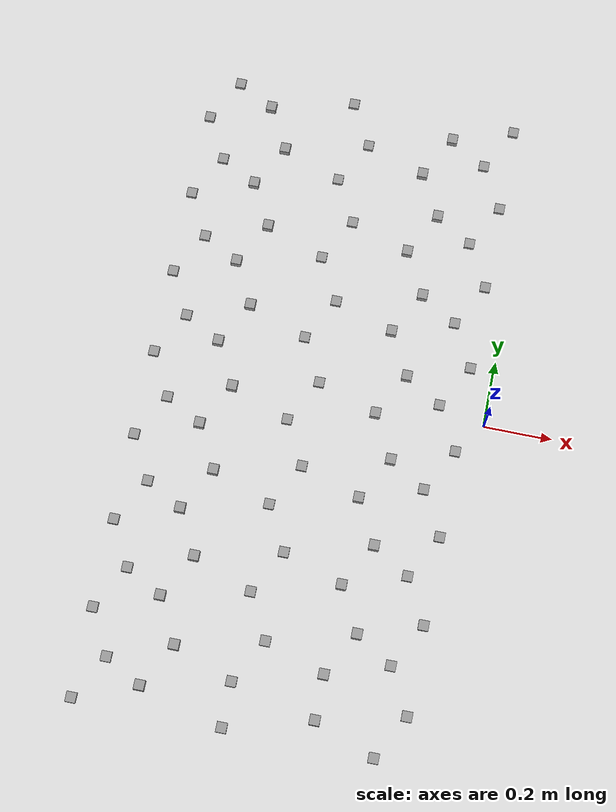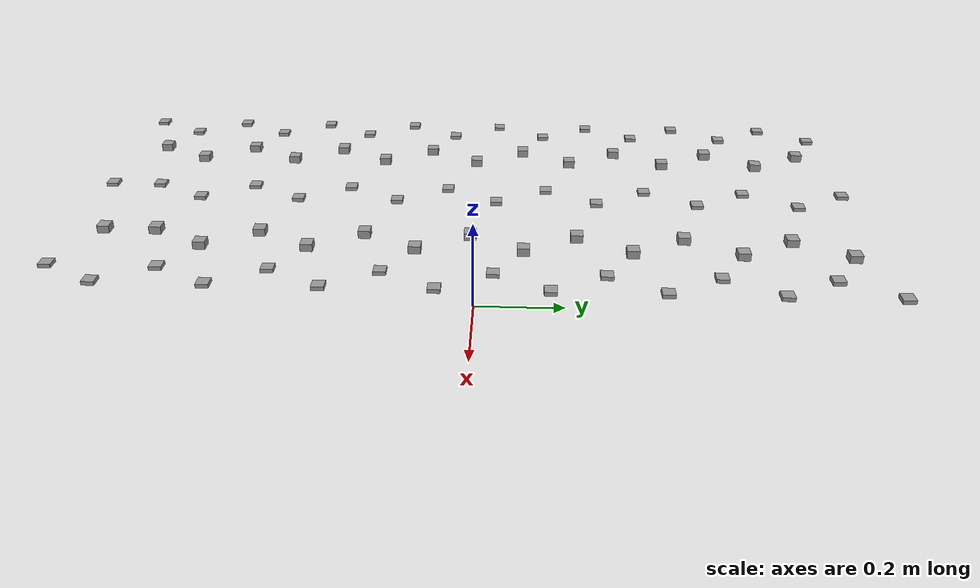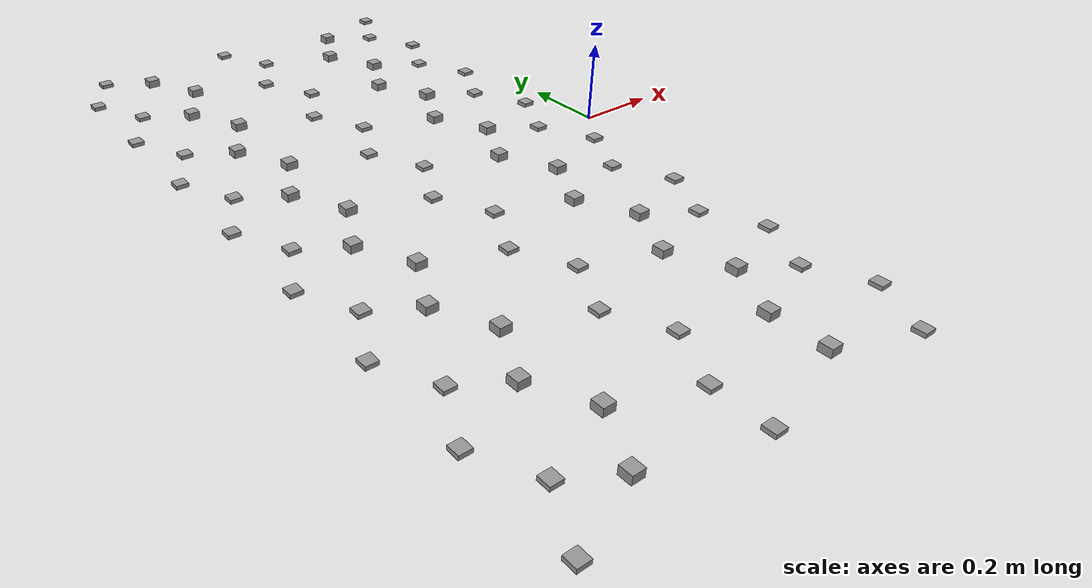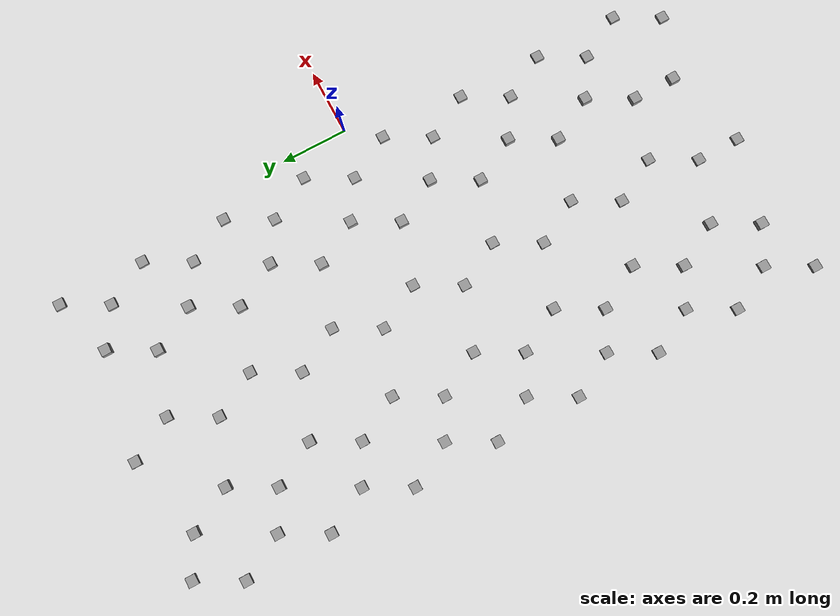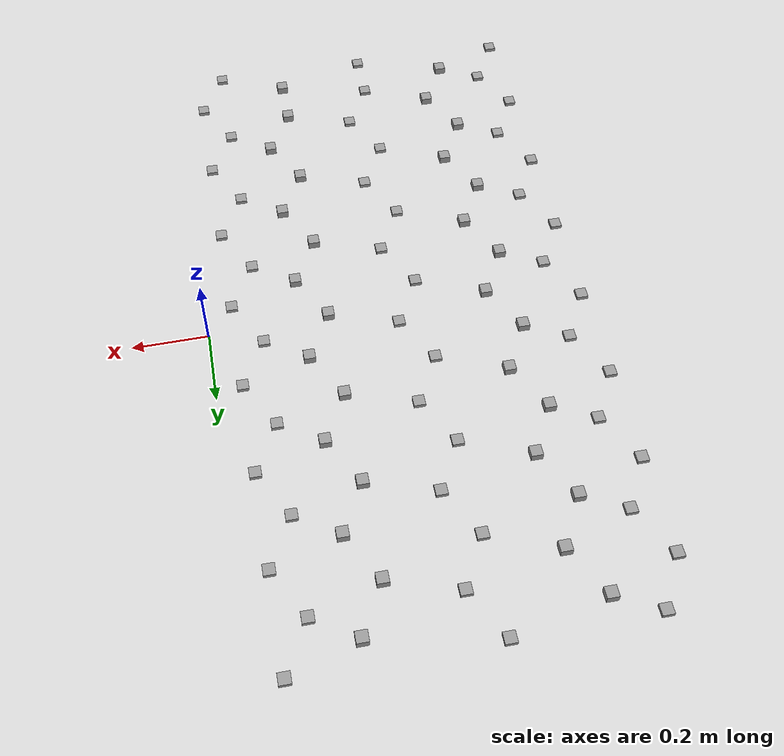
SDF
<sdf version="1.5">
 <world name="default">
  <model name="unit_box_0">
   <pose>-1 -1 0 0 0 0</pose>
   <link name="link">
    <inertial>
     <mass>1</mass>
     <inertia><ixx>0</ixx><ixy>0</ixy><ixz>0</ixz><iyy>0</iyy><iyz>0</iyz><izz>0</izz></inertia>
    </inertial>
    <collision name="collision"><geometry><box><size>0.03 0.03 0.01</size></box></geometry></collision>
    <visual name="visual">
     <geometry><box><size>0.03 0.03 0.01</size></box></geometry>
     <material>
      <script><name>Gazebo/Grey</name><uri>file://media/materials/scripts/gazebo.material</uri></script>
     </material>
    </visual>
   </link>
  </model>
  <model name="unit_box_1">
   <pose>-0.93 -0.87 0 0 0 0</pose>
   <link name="link">
    <inertial>
     <mass>1</mass>
     <inertia><ixx>0</ixx><ixy>0</ixy><ixz>0</ixz><iyy>0</iyy><iyz>0</iyz><izz>0</izz></inertia>
    </inertial>
    <collision name="collision"><geometry><box><size>0.03 0.03 0.01</size></box></geometry></collision>
    <visual name="visual">
     <geometry><box><size>0.03 0.03 0.01</size></box></geometry>
     <material>
      <script><name>Gazebo/Grey</name><uri>file://media/materials/scripts/gazebo.material</uri></script>
     </material>
    </visual>
   </link>
  </model>
  <model name="unit_box_2">
   <pose>-1 -0.74 0 0 0 0</pose>
   <link name="link">
    <inertial>
     <mass>1</mass>
     <inertia><ixx>0</ixx><ixy>0</ixy><ixz>0</ixz><iyy>0</iyy><iyz>0</iyz><izz>0</izz></inertia>
    </inertial>
    <collision name="collision"><geometry><box><size>0.03 0.03 0.01</size></box></geometry></collision>
    <visual name="visual">
     <geometry><box><size>0.03 0.03 0.01</size></box></geometry>
     <material>
      <script><name>Gazebo/Grey</name><uri>file://media/materials/scripts/gazebo.material</uri></script>
     </material>
    </visual>
   </link>
  </model>
  <model name="unit_box_3">
   <pose>-0.93 -0.61 0 0 0 0</pose>
   <link name="link">
    <inertial>
     <mass>1</mass>
     <inertia><ixx>0</ixx><ixy>0</ixy><ixz>0</ixz><iyy>0</iyy><iyz>0</iyz><izz>0</izz></inertia>
    </inertial>
    <collision name="collision"><geometry><box><size>0.03 0.03 0.01</size></box></geometry></collision>
    <visual name="visual">
     <geometry><box><size>0.03 0.03 0.01</size></box></geometry>
     <material>
      <script><name>Gazebo/Grey</name><uri>file://media/materials/scripts/gazebo.material</uri></script>
     </material>
    </visual>
   </link>
  </model>
  <model name="unit_box_4">
   <pose>-1 -0.48 0 0 0 0</pose>
   <link name="link">
    <inertial>
     <mass>1</mass>
     <inertia><ixx>0</ixx><ixy>0</ixy><ixz>0</ixz><iyy>0</iyy><iyz>0</iyz><izz>0</izz></inertia>
    </inertial>
    <collision name="collision"><geometry><box><size>0.03 0.03 0.01</size></box></geometry></collision>
    <visual name="visual">
     <geometry><box><size>0.03 0.03 0.01</size></box></geometry>
     <material>
      <script><name>Gazebo/Grey</name><uri>file://media/materials/scripts/gazebo.material</uri></script>
     </material>
    </visual>
   </link>
  </model>
  <model name="unit_box_5">
   <pose>-0.93 -0.35 0 0 0 0</pose>
   <link name="link">
    <inertial>
     <mass>1</mass>
     <inertia><ixx>0</ixx><ixy>0</ixy><ixz>0</ixz><iyy>0</iyy><iyz>0</iyz><izz>0</izz></inertia>
    </inertial>
    <collision name="collision"><geometry><box><size>0.03 0.03 0.01</size></box></geometry></collision>
    <visual name="visual">
     <geometry><box><size>0.03 0.03 0.01</size></box></geometry>
     <material>
      <script><name>Gazebo/Grey</name><uri>file://media/materials/scripts/gazebo.material</uri></script>
     </material>
    </visual>
   </link>
  </model>
  <model name="unit_box_6">
   <pose>-1 -0.22 0 0 0 0</pose>
   <link name="link">
    <inertial>
     <mass>1</mass>
     <inertia><ixx>0</ixx><ixy>0</ixy><ixz>0</ixz><iyy>0</iyy><iyz>0</iyz><izz>0</izz></inertia>
    </inertial>
    <collision name="collision"><geometry><box><size>0.03 0.03 0.01</size></box></geometry></collision>
    <visual name="visual">
     <geometry><box><size>0.03 0.03 0.01</size></box></geometry>
     <material>
      <script><name>Gazebo/Grey</name><uri>file://media/materials/scripts/gazebo.material</uri></script>
     </material>
    </visual>
   </link>
  </model>
  <model name="unit_box_7">
   <pose>-0.93 -0.0899999999999999 0 0 0 0</pose>
   <link name="link">
    <inertial>
     <mass>1</mass>
     <inertia><ixx>0</ixx><ixy>0</ixy><ixz>0</ixz><iyy>0</iyy><iyz>0</iyz><izz>0</izz></inertia>
    </inertial>
    <collision name="collision"><geometry><box><size>0.03 0.03 0.01</size></box></geometry></collision>
    <visual name="visual">
     <geometry><box><size>0.03 0.03 0.01</size></box></geometry>
     <material>
      <script><name>Gazebo/Grey</name><uri>file://media/materials/scripts/gazebo.material</uri></script>
     </material>
    </visual>
   </link>
  </model>
  <model name="unit_box_8">
   <pose>-1 0.0400000000000001 0 0 0 0</pose>
   <link name="link">
    <inertial>
     <mass>1</mass>
     <inertia><ixx>0</ixx><ixy>0</ixy><ixz>0</ixz><iyy>0</iyy><iyz>0</iyz><izz>0</izz></inertia>
    </inertial>
    <collision name="collision"><geometry><box><size>0.03 0.03 0.01</size></box></geometry></collision>
    <visual name="visual">
     <geometry><box><size>0.03 0.03 0.01</size></box></geometry>
     <material>
      <script><name>Gazebo/Grey</name><uri>file://media/materials/scripts/gazebo.material</uri></script>
     </material>
    </visual>
   </link>
  </model>
  <model name="unit_box_9">
   <pose>-0.93 0.17 0 0 0 0</pose>
   <link name="link">
    <inertial>
     <mass>1</mass>
     <inertia><ixx>0</ixx><ixy>0</ixy><ixz>0</ixz><iyy>0</iyy><iyz>0</iyz><izz>0</izz></inertia>
    </inertial>
    <collision name="collision"><geometry><box><size>0.03 0.03 0.01</size></box></geometry></collision>
    <visual name="visual">
     <geometry><box><size>0.03 0.03 0.01</size></box></geometry>
     <material>
      <script><name>Gazebo/Grey</name><uri>file://media/materials/scripts/gazebo.material</uri></script>
     </material>
    </visual>
   </link>
  </model>
  <model name="unit_box_10">
   <pose>-1 0.3 0 0 0 0</pose>
   <link name="link">
    <inertial>
     <mass>1</mass>
     <inertia><ixx>0</ixx><ixy>0</ixy><ixz>0</ixz><iyy>0</iyy><iyz>0</iyz><izz>0</izz></inertia>
    </inertial>
    <collision name="collision"><geometry><box><size>0.03 0.03 0.01</size></box></geometry></collision>
    <visual name="visual">
     <geometry><box><size>0.03 0.03 0.01</size></box></geometry>
     <material>
      <script><name>Gazebo/Grey</name><uri>file://media/materials/scripts/gazebo.material</uri></script>
     </material>
    </visual>
   </link>
  </model>
  <model name="unit_box_11">
   <pose>-0.93 0.43 0 0 0 0</pose>
   <link name="link">
    <inertial>
     <mass>1</mass>
     <inertia><ixx>0</ixx><ixy>0</ixy><ixz>0</ixz><iyy>0</iyy><iyz>0</iyz><izz>0</izz></inertia>
    </inertial>
    <collision name="collision"><geometry><box><size>0.03 0.03 0.01</size></box></geometry></collision>
    <visual name="visual">
     <geometry><box><size>0.03 0.03 0.01</size></box></geometry>
     <material>
      <script><name>Gazebo/Grey</name><uri>file://media/materials/scripts/gazebo.material</uri></script>
     </material>
    </visual>
   </link>
  </model>
  <model name="unit_box_12">
   <pose>-1 0.56 0 0 0 0</pose>
   <link name="link">
    <inertial>
     <mass>1</mass>
     <inertia><ixx>0</ixx><ixy>0</ixy><ixz>0</ixz><iyy>0</iyy><iyz>0</iyz><izz>0</izz></inertia>
    </inertial>
    <collision name="collision"><geometry><box><size>0.03 0.03 0.01</size></box></geometry></collision>
    <visual name="visual">
     <geometry><box><size>0.03 0.03 0.01</size></box></geometry>
     <material>
      <script><name>Gazebo/Grey</name><uri>file://media/materials/scripts/gazebo.material</uri></script>
     </material>
    </visual>
   </link>
  </model>
  <model name="unit_box_13">
   <pose>-0.93 0.69 0 0 0 0</pose>
   <link name="link">
    <inertial>
     <mass>1</mass>
     <inertia><ixx>0</ixx><ixy>0</ixy><ixz>0</ixz><iyy>0</iyy><iyz>0</iyz><izz>0</izz></inertia>
    </inertial>
    <collision name="collision"><geometry><box><size>0.03 0.03 0.01</size></box></geometry></collision>
    <visual name="visual">
     <geometry><box><size>0.03 0.03 0.01</size></box></geometry>
     <material>
      <script><name>Gazebo/Grey</name><uri>file://media/materials/scripts/gazebo.material</uri></script>
     </material>
    </visual>
   </link>
  </model>
  <model name="unit_box_14">
   <pose>-1 0.82 0 0 0 0</pose>
   <link name="link">
    <inertial>
     <mass>1</mass>
     <inertia><ixx>0</ixx><ixy>0</ixy><ixz>0</ixz><iyy>0</iyy><iyz>0</iyz><izz>0</izz></inertia>
    </inertial>
    <collision name="collision"><geometry><box><size>0.03 0.03 0.01</size></box></geometry></collision>
    <visual name="visual">
     <geometry><box><size>0.03 0.03 0.01</size></box></geometry>
     <material>
      <script><name>Gazebo/Grey</name><uri>file://media/materials/scripts/gazebo.material</uri></script>
     </material>
    </visual>
   </link>
  </model>
  <model name="unit_box_15">
   <pose>-0.93 0.95 0 0 0 0</pose>
   <link name="link">
    <inertial>
     <mass>1</mass>
     <inertia><ixx>0</ixx><ixy>0</ixy><ixz>0</ixz><iyy>0</iyy><iyz>0</iyz><izz>0</izz></inertia>
    </inertial>
    <collision name="collision"><geometry><box><size>0.03 0.03 0.01</size></box></geometry></collision>
    <visual name="visual">
     <geometry><box><size>0.03 0.03 0.01</size></box></geometry>
     <material>
      <script><name>Gazebo/Grey</name><uri>file://media/materials/scripts/gazebo.material</uri></script>
     </material>
    </visual>
   </link>
  </model>
  <model name="unit_box_16">
   <pose>-0.82 -0.93 0 0 0 0</pose>
   <link name="link">
    <inertial>
     <mass>1</mass>
     <inertia><ixx>0</ixx><ixy>0</ixy><ixz>0</ixz><iyy>0</iyy><iyz>0</iyz><izz>0</izz></inertia>
    </inertial>
    <collision name="collision"><geometry><box><size>0.03 0.03 0.02</size></box></geometry></collision>
    <visual name="visual">
     <geometry><box><size>0.03 0.03 0.02</size></box></geometry>
     <material>
      <script><name>Gazebo/Grey</name><uri>file://media/materials/scripts/gazebo.material</uri></script>
     </material>
    </visual>
   </link>
  </model>
  <model name="unit_box_17">
   <pose>-0.75 -0.8 0 0 0 0</pose>
   <link name="link">
    <inertial>
     <mass>1</mass>
     <inertia><ixx>0</ixx><ixy>0</ixy><ixz>0</ixz><iyy>0</iyy><iyz>0</iyz><izz>0</izz></inertia>
    </inertial>
    <collision name="collision"><geometry><box><size>0.03 0.03 0.02</size></box></geometry></collision>
    <visual name="visual">
     <geometry><box><size>0.03 0.03 0.02</size></box></geometry>
     <material>
      <script><name>Gazebo/Grey</name><uri>file://media/materials/scripts/gazebo.material</uri></script>
     </material>
    </visual>
   </link>
  </model>
  <model name="unit_box_18">
   <pose>-0.82 -0.67 0 0 0 0</pose>
   <link name="link">
    <inertial>
     <mass>1</mass>
     <inertia><ixx>0</ixx><ixy>0</ixy><ixz>0</ixz><iyy>0</iyy><iyz>0</iyz><izz>0</izz></inertia>
    </inertial>
    <collision name="collision"><geometry><box><size>0.03 0.03 0.02</size></box></geometry></collision>
    <visual name="visual">
     <geometry><box><size>0.03 0.03 0.02</size></box></geometry>
     <material>
      <script><name>Gazebo/Grey</name><uri>file://media/materials/scripts/gazebo.material</uri></script>
     </material>
    </visual>
   </link>
  </model>
  <model name="unit_box_19">
   <pose>-0.75 -0.54 0 0 0 0</pose>
   <link name="link">
    <inertial>
     <mass>1</mass>
     <inertia><ixx>0</ixx><ixy>0</ixy><ixz>0</ixz><iyy>0</iyy><iyz>0</iyz><izz>0</izz></inertia>
    </inertial>
    <collision name="collision"><geometry><box><size>0.03 0.03 0.02</size></box></geometry></collision>
    <visual name="visual">
     <geometry><box><size>0.03 0.03 0.02</size></box></geometry>
     <material>
      <script><name>Gazebo/Grey</name><uri>file://media/materials/scripts/gazebo.material</uri></script>
     </material>
    </visual>
   </link>
  </model>
  <model name="unit_box_20">
   <pose>-0.82 -0.41 0 0 0 0</pose>
   <link name="link">
    <inertial>
     <mass>1</mass>
     <inertia><ixx>0</ixx><ixy>0</ixy><ixz>0</ixz><iyy>0</iyy><iyz>0</iyz><izz>0</izz></inertia>
    </inertial>
    <collision name="collision"><geometry><box><size>0.03 0.03 0.02</size></box></geometry></collision>
    <visual name="visual">
     <geometry><box><size>0.03 0.03 0.02</size></box></geometry>
     <material>
      <script><name>Gazebo/Grey</name><uri>file://media/materials/scripts/gazebo.material</uri></script>
     </material>
    </visual>
   </link>
  </model>
  <model name="unit_box_21">
   <pose>-0.75 -0.28 0 0 0 0</pose>
   <link name="link">
    <inertial>
     <mass>1</mass>
     <inertia><ixx>0</ixx><ixy>0</ixy><ixz>0</ixz><iyy>0</iyy><iyz>0</iyz><izz>0</izz></inertia>
    </inertial>
    <collision name="collision"><geometry><box><size>0.03 0.03 0.02</size></box></geometry></collision>
    <visual name="visual">
     <geometry><box><size>0.03 0.03 0.02</size></box></geometry>
     <material>
      <script><name>Gazebo/Grey</name><uri>file://media/materials/scripts/gazebo.material</uri></script>
     </material>
    </visual>
   </link>
  </model>
  <model name="unit_box_22">
   <pose>-0.82 -0.15 0 0 0 0</pose>
   <link name="link">
    <inertial>
     <mass>1</mass>
     <inertia><ixx>0</ixx><ixy>0</ixy><ixz>0</ixz><iyy>0</iyy><iyz>0</iyz><izz>0</izz></inertia>
    </inertial>
    <collision name="collision"><geometry><box><size>0.03 0.03 0.02</size></box></geometry></collision>
    <visual name="visual">
     <geometry><box><size>0.03 0.03 0.02</size></box></geometry>
     <material>
      <script><name>Gazebo/Grey</name><uri>file://media/materials/scripts/gazebo.material</uri></script>
     </material>
    </visual>
   </link>
  </model>
  <model name="unit_box_23">
   <pose>-0.75 -0.02 0 0 0 0</pose>
   <link name="link">
    <inertial>
     <mass>1</mass>
     <inertia><ixx>0</ixx><ixy>0</ixy><ixz>0</ixz><iyy>0</iyy><iyz>0</iyz><izz>0</izz></inertia>
    </inertial>
    <collision name="collision"><geometry><box><size>0.03 0.03 0.02</size></box></geometry></collision>
    <visual name="visual">
     <geometry><box><size>0.03 0.03 0.02</size></box></geometry>
     <material>
      <script><name>Gazebo/Grey</name><uri>file://media/materials/scripts/gazebo.material</uri></script>
     </material>
    </visual>
   </link>
  </model>
  <model name="unit_box_24">
   <pose>-0.82 0.11 0 0 0 0</pose>
   <link name="link">
    <inertial>
     <mass>1</mass>
     <inertia><ixx>0</ixx><ixy>0</ixy><ixz>0</ixz><iyy>0</iyy><iyz>0</iyz><izz>0</izz></inertia>
    </inertial>
    <collision name="collision"><geometry><box><size>0.03 0.03 0.02</size></box></geometry></collision>
    <visual name="visual">
     <geometry><box><size>0.03 0.03 0.02</size></box></geometry>
     <material>
      <script><name>Gazebo/Grey</name><uri>file://media/materials/scripts/gazebo.material</uri></script>
     </material>
    </visual>
   </link>
  </model>
  <model name="unit_box_25">
   <pose>-0.75 0.24 0 0 0 0</pose>
   <link name="link">
    <inertial>
     <mass>1</mass>
     <inertia><ixx>0</ixx><ixy>0</ixy><ixz>0</ixz><iyy>0</iyy><iyz>0</iyz><izz>0</izz></inertia>
    </inertial>
    <collision name="collision"><geometry><box><size>0.03 0.03 0.02</size></box></geometry></collision>
    <visual name="visual">
     <geometry><box><size>0.03 0.03 0.02</size></box></geometry>
     <material>
      <script><name>Gazebo/Grey</name><uri>file://media/materials/scripts/gazebo.material</uri></script>
     </material>
    </visual>
   </link>
  </model>
  <model name="unit_box_26">
   <pose>-0.82 0.37 0 0 0 0</pose>
   <link name="link">
    <inertial>
     <mass>1</mass>
     <inertia><ixx>0</ixx><ixy>0</ixy><ixz>0</ixz><iyy>0</iyy><iyz>0</iyz><izz>0</izz></inertia>
    </inertial>
    <collision name="collision"><geometry><box><size>0.03 0.03 0.02</size></box></geometry></collision>
    <visual name="visual">
     <geometry><box><size>0.03 0.03 0.02</size></box></geometry>
     <material>
      <script><name>Gazebo/Grey</name><uri>file://media/materials/scripts/gazebo.material</uri></script>
     </material>
    </visual>
   </link>
  </model>
  <model name="unit_box_27">
   <pose>-0.75 0.5 0 0 0 0</pose>
   <link name="link">
    <inertial>
     <mass>1</mass>
     <inertia><ixx>0</ixx><ixy>0</ixy><ixz>0</ixz><iyy>0</iyy><iyz>0</iyz><izz>0</izz></inertia>
    </inertial>
    <collision name="collision"><geometry><box><size>0.03 0.03 0.02</size></box></geometry></collision>
    <visual name="visual">
     <geometry><box><size>0.03 0.03 0.02</size></box></geometry>
     <material>
      <script><name>Gazebo/Grey</name><uri>file://media/materials/scripts/gazebo.material</uri></script>
     </material>
    </visual>
   </link>
  </model>
  <model name="unit_box_28">
   <pose>-0.82 0.63 0 0 0 0</pose>
   <link name="link">
    <inertial>
     <mass>1</mass>
     <inertia><ixx>0</ixx><ixy>0</ixy><ixz>0</ixz><iyy>0</iyy><iyz>0</iyz><izz>0</izz></inertia>
    </inertial>
    <collision name="collision"><geometry><box><size>0.03 0.03 0.02</size></box></geometry></collision>
    <visual name="visual">
     <geometry><box><size>0.03 0.03 0.02</size></box></geometry>
     <material>
      <script><name>Gazebo/Grey</name><uri>file://media/materials/scripts/gazebo.material</uri></script>
     </material>
    </visual>
   </link>
  </model>
  <model name="unit_box_29">
   <pose>-0.75 0.76 0 0 0 0</pose>
   <link name="link">
    <inertial>
     <mass>1</mass>
     <inertia><ixx>0</ixx><ixy>0</ixy><ixz>0</ixz><iyy>0</iyy><iyz>0</iyz><izz>0</izz></inertia>
    </inertial>
    <collision name="collision"><geometry><box><size>0.03 0.03 0.02</size></box></geometry></collision>
    <visual name="visual">
     <geometry><box><size>0.03 0.03 0.02</size></box></geometry>
     <material>
      <script><name>Gazebo/Grey</name><uri>file://media/materials/scripts/gazebo.material</uri></script>
     </material>
    </visual>
   </link>
  </model>
  <model name="unit_box_30">
   <pose>-0.82 0.89 0 0 0 0</pose>
   <link name="link">
    <inertial>
     <mass>1</mass>
     <inertia><ixx>0</ixx><ixy>0</ixy><ixz>0</ixz><iyy>0</iyy><iyz>0</iyz><izz>0</izz></inertia>
    </inertial>
    <collision name="collision"><geometry><box><size>0.03 0.03 0.02</size></box></geometry></collision>
    <visual name="visual">
     <geometry><box><size>0.03 0.03 0.02</size></box></geometry>
     <material>
      <script><name>Gazebo/Grey</name><uri>file://media/materials/scripts/gazebo.material</uri></script>
     </material>
    </visual>
   </link>
  </model>
  <model name="unit_box_31">
   <pose>-0.57 -1 0 0 0 0</pose>
   <link name="link">
    <inertial>
     <mass>1</mass>
     <inertia><ixx>0</ixx><ixy>0</ixy><ixz>0</ixz><iyy>0</iyy><iyz>0</iyz><izz>0</izz></inertia>
    </inertial>
    <collision name="collision"><geometry><box><size>0.03 0.03 0.01</size></box></geometry></collision>
    <visual name="visual">
     <geometry><box><size>0.03 0.03 0.01</size></box></geometry>
     <material>
      <script><name>Gazebo/Grey</name><uri>file://media/materials/scripts/gazebo.material</uri></script>
     </material>
    </visual>
   </link>
  </model>
  <model name="unit_box_32">
   <pose>-0.57 -0.87 0 0 0 0</pose>
   <link name="link">
    <inertial>
     <mass>1</mass>
     <inertia><ixx>0</ixx><ixy>0</ixy><ixz>0</ixz><iyy>0</iyy><iyz>0</iyz><izz>0</izz></inertia>
    </inertial>
    <collision name="collision"><geometry><box><size>0.03 0.03 0.01</size></box></geometry></collision>
    <visual name="visual">
     <geometry><box><size>0.03 0.03 0.01</size></box></geometry>
     <material>
      <script><name>Gazebo/Grey</name><uri>file://media/materials/scripts/gazebo.material</uri></script>
     </material>
    </visual>
   </link>
  </model>
  <model name="unit_box_33">
   <pose>-0.5 -0.74 0 0 0 0</pose>
   <link name="link">
    <inertial>
     <mass>1</mass>
     <inertia><ixx>0</ixx><ixy>0</ixy><ixz>0</ixz><iyy>0</iyy><iyz>0</iyz><izz>0</izz></inertia>
    </inertial>
    <collision name="collision"><geometry><box><size>0.03 0.03 0.01</size></box></geometry></collision>
    <visual name="visual">
     <geometry><box><size>0.03 0.03 0.01</size></box></geometry>
     <material>
      <script><name>Gazebo/Grey</name><uri>file://media/materials/scripts/gazebo.material</uri></script>
     </material>
    </visual>
   </link>
  </model>
  <model name="unit_box_34">
   <pose>-0.57 -0.61 0 0 0 0</pose>
   <link name="link">
    <inertial>
     <mass>1</mass>
     <inertia><ixx>0</ixx><ixy>0</ixy><ixz>0</ixz><iyy>0</iyy><iyz>0</iyz><izz>0</izz></inertia>
    </inertial>
    <collision name="collision"><geometry><box><size>0.03 0.03 0.01</size></box></geometry></collision>
    <visual name="visual">
     <geometry><box><size>0.03 0.03 0.01</size></box></geometry>
     <material>
      <script><name>Gazebo/Grey</name><uri>file://media/materials/scripts/gazebo.material</uri></script>
     </material>
    </visual>
   </link>
  </model>
  <model name="unit_box_35">
   <pose>-0.5 -0.48 0 0 0 0</pose>
   <link name="link">
    <inertial>
     <mass>1</mass>
     <inertia><ixx>0</ixx><ixy>0</ixy><ixz>0</ixz><iyy>0</iyy><iyz>0</iyz><izz>0</izz></inertia>
    </inertial>
    <collision name="collision"><geometry><box><size>0.03 0.03 0.01</size></box></geometry></collision>
    <visual name="visual">
     <geometry><box><size>0.03 0.03 0.01</size></box></geometry>
     <material>
      <script><name>Gazebo/Grey</name><uri>file://media/materials/scripts/gazebo.material</uri></script>
     </material>
    </visual>
   </link>
  </model>
  <model name="unit_box_36">
   <pose>-0.57 -0.35 0 0 0 0</pose>
   <link name="link">
    <inertial>
     <mass>1</mass>
     <inertia><ixx>0</ixx><ixy>0</ixy><ixz>0</ixz><iyy>0</iyy><iyz>0</iyz><izz>0</izz></inertia>
    </inertial>
    <collision name="collision"><geometry><box><size>0.03 0.03 0.01</size></box></geometry></collision>
    <visual name="visual">
     <geometry><box><size>0.03 0.03 0.01</size></box></geometry>
     <material>
      <script><name>Gazebo/Grey</name><uri>file://media/materials/scripts/gazebo.material</uri></script>
     </material>
    </visual>
   </link>
  </model>
  <model name="unit_box_37">
   <pose>-0.5 -0.22 0 0 0 0</pose>
   <link name="link">
    <inertial>
     <mass>1</mass>
     <inertia><ixx>0</ixx><ixy>0</ixy><ixz>0</ixz><iyy>0</iyy><iyz>0</iyz><izz>0</izz></inertia>
    </inertial>
    <collision name="collision"><geometry><box><size>0.03 0.03 0.01</size></box></geometry></collision>
    <visual name="visual">
     <geometry><box><size>0.03 0.03 0.01</size></box></geometry>
     <material>
      <script><name>Gazebo/Grey</name><uri>file://media/materials/scripts/gazebo.material</uri></script>
     </material>
    </visual>
   </link>
  </model>
  <model name="unit_box_38">
   <pose>-0.57 -0.0899999999999999 0 0 0 0</pose>
   <link name="link">
    <inertial>
     <mass>1</mass>
     <inertia><ixx>0</ixx><ixy>0</ixy><ixz>0</ixz><iyy>0</iyy><iyz>0</iyz><izz>0</izz></inertia>
    </inertial>
    <collision name="collision"><geometry><box><size>0.03 0.03 0.01</size></box></geometry></collision>
    <visual name="visual">
     <geometry><box><size>0.03 0.03 0.01</size></box></geometry>
     <material>
      <script><name>Gazebo/Grey</name><uri>file://media/materials/scripts/gazebo.material</uri></script>
     </material>
    </visual>
   </link>
  </model>
  <model name="unit_box_39">
   <pose>-0.5 0.0400000000000001 0 0 0 0</pose>
   <link name="link">
    <inertial>
     <mass>1</mass>
     <inertia><ixx>0</ixx><ixy>0</ixy><ixz>0</ixz><iyy>0</iyy><iyz>0</iyz><izz>0</izz></inertia>
    </inertial>
    <collision name="collision"><geometry><box><size>0.03 0.03 0.01</size></box></geometry></collision>
    <visual name="visual">
     <geometry><box><size>0.03 0.03 0.01</size></box></geometry>
     <material>
      <script><name>Gazebo/Grey</name><uri>file://media/materials/scripts/gazebo.material</uri></script>
     </material>
    </visual>
   </link>
  </model>
  <model name="unit_box_40">
   <pose>-0.57 0.17 0 0 0 0</pose>
   <link name="link">
    <inertial>
     <mass>1</mass>
     <inertia><ixx>0</ixx><ixy>0</ixy><ixz>0</ixz><iyy>0</iyy><iyz>0</iyz><izz>0</izz></inertia>
    </inertial>
    <collision name="collision"><geometry><box><size>0.03 0.03 0.01</size></box></geometry></collision>
    <visual name="visual">
     <geometry><box><size>0.03 0.03 0.01</size></box></geometry>
     <material>
      <script><name>Gazebo/Grey</name><uri>file://media/materials/scripts/gazebo.material</uri></script>
     </material>
    </visual>
   </link>
  </model>
  <model name="unit_box_41">
   <pose>-0.5 0.3 0 0 0 0</pose>
   <link name="link">
    <inertial>
     <mass>1</mass>
     <inertia><ixx>0</ixx><ixy>0</ixy><ixz>0</ixz><iyy>0</iyy><iyz>0</iyz><izz>0</izz></inertia>
    </inertial>
    <collision name="collision"><geometry><box><size>0.03 0.03 0.01</size></box></geometry></collision>
    <visual name="visual">
     <geometry><box><size>0.03 0.03 0.01</size></box></geometry>
     <material>
      <script><name>Gazebo/Grey</name><uri>file://media/materials/scripts/gazebo.material</uri></script>
     </material>
    </visual>
   </link>
  </model>
  <model name="unit_box_42">
   <pose>-0.57 0.43 0 0 0 0</pose>
   <link name="link">
    <inertial>
     <mass>1</mass>
     <inertia><ixx>0</ixx><ixy>0</ixy><ixz>0</ixz><iyy>0</iyy><iyz>0</iyz><izz>0</izz></inertia>
    </inertial>
    <collision name="collision"><geometry><box><size>0.03 0.03 0.01</size></box></geometry></collision>
    <visual name="visual">
     <geometry><box><size>0.03 0.03 0.01</size></box></geometry>
     <material>
      <script><name>Gazebo/Grey</name><uri>file://media/materials/scripts/gazebo.material</uri></script>
     </material>
    </visual>
   </link>
  </model>
  <model name="unit_box_43">
   <pose>-0.5 0.56 0 0 0 0</pose>
   <link name="link">
    <inertial>
     <mass>1</mass>
     <inertia><ixx>0</ixx><ixy>0</ixy><ixz>0</ixz><iyy>0</iyy><iyz>0</iyz><izz>0</izz></inertia>
    </inertial>
    <collision name="collision"><geometry><box><size>0.03 0.03 0.01</size></box></geometry></collision>
    <visual name="visual">
     <geometry><box><size>0.03 0.03 0.01</size></box></geometry>
     <material>
      <script><name>Gazebo/Grey</name><uri>file://media/materials/scripts/gazebo.material</uri></script>
     </material>
    </visual>
   </link>
  </model>
  <model name="unit_box_44">
   <pose>-0.57 0.69 0 0 0 0</pose>
   <link name="link">
    <inertial>
     <mass>1</mass>
     <inertia><ixx>0</ixx><ixy>0</ixy><ixz>0</ixz><iyy>0</iyy><iyz>0</iyz><izz>0</izz></inertia>
    </inertial>
    <collision name="collision"><geometry><box><size>0.03 0.03 0.01</size></box></geometry></collision>
    <visual name="visual">
     <geometry><box><size>0.03 0.03 0.01</size></box></geometry>
     <material>
      <script><name>Gazebo/Grey</name><uri>file://media/materials/scripts/gazebo.material</uri></script>
     </material>
    </visual>
   </link>
  </model>
  <model name="unit_box_45">
   <pose>-0.5 0.82 0 0 0 0</pose>
   <link name="link">
    <inertial>
     <mass>1</mass>
     <inertia><ixx>0</ixx><ixy>0</ixy><ixz>0</ixz><iyy>0</iyy><iyz>0</iyz><izz>0</izz></inertia>
    </inertial>
    <collision name="collision"><geometry><box><size>0.03 0.03 0.01</size></box></geometry></collision>
    <visual name="visual">
     <geometry><box><size>0.03 0.03 0.01</size></box></geometry>
     <material>
      <script><name>Gazebo/Grey</name><uri>file://media/materials/scripts/gazebo.material</uri></script>
     </material>
    </visual>
   </link>
  </model>
  <model name="unit_box_46">
   <pose>-0.57 0.95 0 0 0 0</pose>
   <link name="link">
    <inertial>
     <mass>1</mass>
     <inertia><ixx>0</ixx><ixy>0</ixy><ixz>0</ixz><iyy>0</iyy><iyz>0</iyz><izz>0</izz></inertia>
    </inertial>
    <collision name="collision"><geometry><box><size>0.03 0.03 0.01</size></box></geometry></collision>
    <visual name="visual">
     <geometry><box><size>0.03 0.03 0.01</size></box></geometry>
     <material>
      <script><name>Gazebo/Grey</name><uri>file://media/materials/scripts/gazebo.material</uri></script>
     </material>
    </visual>
   </link>
  </model>
  <model name="unit_box_47">
   <pose>-0.32 -0.93 0 0 0 0</pose>
   <link name="link">
    <inertial>
     <mass>1</mass>
     <inertia><ixx>0</ixx><ixy>0</ixy><ixz>0</ixz><iyy>0</iyy><iyz>0</iyz><izz>0</izz></inertia>
    </inertial>
    <collision name="collision"><geometry><box><size>0.03 0.03 0.02</size></box></geometry></collision>
    <visual name="visual">
     <geometry><box><size>0.03 0.03 0.02</size></box></geometry>
     <material>
      <script><name>Gazebo/Grey</name><uri>file://media/materials/scripts/gazebo.material</uri></script>
     </material>
    </visual>
   </link>
  </model>
  <model name="unit_box_48">
   <pose>-0.32 -0.8 0 0 0 0</pose>
   <link name="link">
    <inertial>
     <mass>1</mass>
     <inertia><ixx>0</ixx><ixy>0</ixy><ixz>0</ixz><iyy>0</iyy><iyz>0</iyz><izz>0</izz></inertia>
    </inertial>
    <collision name="collision"><geometry><box><size>0.03 0.03 0.02</size></box></geometry></collision>
    <visual name="visual">
     <geometry><box><size>0.03 0.03 0.02</size></box></geometry>
     <material>
      <script><name>Gazebo/Grey</name><uri>file://media/materials/scripts/gazebo.material</uri></script>
     </material>
    </visual>
   </link>
  </model>
  <model name="unit_box_49">
   <pose>-0.25 -0.67 0 0 0 0</pose>
   <link name="link">
    <inertial>
     <mass>1</mass>
     <inertia><ixx>0</ixx><ixy>0</ixy><ixz>0</ixz><iyy>0</iyy><iyz>0</iyz><izz>0</izz></inertia>
    </inertial>
    <collision name="collision"><geometry><box><size>0.03 0.03 0.02</size></box></geometry></collision>
    <visual name="visual">
     <geometry><box><size>0.03 0.03 0.02</size></box></geometry>
     <material>
      <script><name>Gazebo/Grey</name><uri>file://media/materials/scripts/gazebo.material</uri></script>
     </material>
    </visual>
   </link>
  </model>
  <model name="unit_box_50">
   <pose>-0.32 -0.54 0 0 0 0</pose>
   <link name="link">
    <inertial>
     <mass>1</mass>
     <inertia><ixx>0</ixx><ixy>0</ixy><ixz>0</ixz><iyy>0</iyy><iyz>0</iyz><izz>0</izz></inertia>
    </inertial>
    <collision name="collision"><geometry><box><size>0.03 0.03 0.02</size></box></geometry></collision>
    <visual name="visual">
     <geometry><box><size>0.03 0.03 0.02</size></box></geometry>
     <material>
      <script><name>Gazebo/Grey</name><uri>file://media/materials/scripts/gazebo.material</uri></script>
     </material>
    </visual>
   </link>
  </model>
  <model name="unit_box_51">
   <pose>-0.25 -0.41 0 0 0 0</pose>
   <link name="link">
    <inertial>
     <mass>1</mass>
     <inertia><ixx>0</ixx><ixy>0</ixy><ixz>0</ixz><iyy>0</iyy><iyz>0</iyz><izz>0</izz></inertia>
    </inertial>
    <collision name="collision"><geometry><box><size>0.03 0.03 0.02</size></box></geometry></collision>
    <visual name="visual">
     <geometry><box><size>0.03 0.03 0.02</size></box></geometry>
     <material>
      <script><name>Gazebo/Grey</name><uri>file://media/materials/scripts/gazebo.material</uri></script>
     </material>
    </visual>
   </link>
  </model>
  <model name="unit_box_52">
   <pose>-0.32 -0.28 0 0 0 0</pose>
   <link name="link">
    <inertial>
     <mass>1</mass>
     <inertia><ixx>0</ixx><ixy>0</ixy><ixz>0</ixz><iyy>0</iyy><iyz>0</iyz><izz>0</izz></inertia>
    </inertial>
    <collision name="collision"><geometry><box><size>0.03 0.03 0.02</size></box></geometry></collision>
    <visual name="visual">
     <geometry><box><size>0.03 0.03 0.02</size></box></geometry>
     <material>
      <script><name>Gazebo/Grey</name><uri>file://media/materials/scripts/gazebo.material</uri></script>
     </material>
    </visual>
   </link>
  </model>
  <model name="unit_box_53">
   <pose>-0.25 -0.15 0 0 0 0</pose>
   <link name="link">
    <inertial>
     <mass>1</mass>
     <inertia><ixx>0</ixx><ixy>0</ixy><ixz>0</ixz><iyy>0</iyy><iyz>0</iyz><izz>0</izz></inertia>
    </inertial>
    <collision name="collision"><geometry><box><size>0.03 0.03 0.02</size></box></geometry></collision>
    <visual name="visual">
     <geometry><box><size>0.03 0.03 0.02</size></box></geometry>
     <material>
      <script><name>Gazebo/Grey</name><uri>file://media/materials/scripts/gazebo.material</uri></script>
     </material>
    </visual>
   </link>
  </model>
  <model name="unit_box_54">
   <pose>-0.32 -0.02 0 0 0 0</pose>
   <link name="link">
    <inertial>
     <mass>1</mass>
     <inertia><ixx>0</ixx><ixy>0</ixy><ixz>0</ixz><iyy>0</iyy><iyz>0</iyz><izz>0</izz></inertia>
    </inertial>
    <collision name="collision"><geometry><box><size>0.03 0.03 0.02</size></box></geometry></collision>
    <visual name="visual">
     <geometry><box><size>0.03 0.03 0.02</size></box></geometry>
     <material>
      <script><name>Gazebo/Grey</name><uri>file://media/materials/scripts/gazebo.material</uri></script>
     </material>
    </visual>
   </link>
  </model>
  <model name="unit_box_55">
   <pose>-0.25 0.11 0 0 0 0</pose>
   <link name="link">
    <inertial>
     <mass>1</mass>
     <inertia><ixx>0</ixx><ixy>0</ixy><ixz>0</ixz><iyy>0</iyy><iyz>0</iyz><izz>0</izz></inertia>
    </inertial>
    <collision name="collision"><geometry><box><size>0.03 0.03 0.02</size></box></geometry></collision>
    <visual name="visual">
     <geometry><box><size>0.03 0.03 0.02</size></box></geometry>
     <material>
      <script><name>Gazebo/Grey</name><uri>file://media/materials/scripts/gazebo.material</uri></script>
     </material>
    </visual>
   </link>
  </model>
  <model name="unit_box_56">
   <pose>-0.32 0.24 0 0 0 0</pose>
   <link name="link">
    <inertial>
     <mass>1</mass>
     <inertia><ixx>0</ixx><ixy>0</ixy><ixz>0</ixz><iyy>0</iyy><iyz>0</iyz><izz>0</izz></inertia>
    </inertial>
    <collision name="collision"><geometry><box><size>0.03 0.03 0.02</size></box></geometry></collision>
    <visual name="visual">
     <geometry><box><size>0.03 0.03 0.02</size></box></geometry>
     <material>
      <script><name>Gazebo/Grey</name><uri>file://media/materials/scripts/gazebo.material</uri></script>
     </material>
    </visual>
   </link>
  </model>
  <model name="unit_box_57">
   <pose>-0.25 0.37 0 0 0 0</pose>
   <link name="link">
    <inertial>
     <mass>1</mass>
     <inertia><ixx>0</ixx><ixy>0</ixy><ixz>0</ixz><iyy>0</iyy><iyz>0</iyz><izz>0</izz></inertia>
    </inertial>
    <collision name="collision"><geometry><box><size>0.03 0.03 0.02</size></box></geometry></collision>
    <visual name="visual">
     <geometry><box><size>0.03 0.03 0.02</size></box></geometry>
     <material>
      <script><name>Gazebo/Grey</name><uri>file://media/materials/scripts/gazebo.material</uri></script>
     </material>
    </visual>
   </link>
  </model>
  <model name="unit_box_58">
   <pose>-0.32 0.5 0 0 0 0</pose>
   <link name="link">
    <inertial>
     <mass>1</mass>
     <inertia><ixx>0</ixx><ixy>0</ixy><ixz>0</ixz><iyy>0</iyy><iyz>0</iyz><izz>0</izz></inertia>
    </inertial>
    <collision name="collision"><geometry><box><size>0.03 0.03 0.02</size></box></geometry></collision>
    <visual name="visual">
     <geometry><box><size>0.03 0.03 0.02</size></box></geometry>
     <material>
      <script><name>Gazebo/Grey</name><uri>file://media/materials/scripts/gazebo.material</uri></script>
     </material>
    </visual>
   </link>
  </model>
  <model name="unit_box_59">
   <pose>-0.25 0.63 0 0 0 0</pose>
   <link name="link">
    <inertial>
     <mass>1</mass>
     <inertia><ixx>0</ixx><ixy>0</ixy><ixz>0</ixz><iyy>0</iyy><iyz>0</iyz><izz>0</izz></inertia>
    </inertial>
    <collision name="collision"><geometry><box><size>0.03 0.03 0.02</size></box></geometry></collision>
    <visual name="visual">
     <geometry><box><size>0.03 0.03 0.02</size></box></geometry>
     <material>
      <script><name>Gazebo/Grey</name><uri>file://media/materials/scripts/gazebo.material</uri></script>
     </material>
    </visual>
   </link>
  </model>
  <model name="unit_box_60">
   <pose>-0.32 0.76 0 0 0 0</pose>
   <link name="link">
    <inertial>
     <mass>1</mass>
     <inertia><ixx>0</ixx><ixy>0</ixy><ixz>0</ixz><iyy>0</iyy><iyz>0</iyz><izz>0</izz></inertia>
    </inertial>
    <collision name="collision"><geometry><box><size>0.03 0.03 0.02</size></box></geometry></collision>
    <visual name="visual">
     <geometry><box><size>0.03 0.03 0.02</size></box></geometry>
     <material>
      <script><name>Gazebo/Grey</name><uri>file://media/materials/scripts/gazebo.material</uri></script>
     </material>
    </visual>
   </link>
  </model>
  <model name="unit_box_61">
   <pose>-0.25 0.89 0 0 0 0</pose>
   <link name="link">
    <inertial>
     <mass>1</mass>
     <inertia><ixx>0</ixx><ixy>0</ixy><ixz>0</ixz><iyy>0</iyy><iyz>0</iyz><izz>0</izz></inertia>
    </inertial>
    <collision name="collision"><geometry><box><size>0.03 0.03 0.02</size></box></geometry></collision>
    <visual name="visual">
     <geometry><box><size>0.03 0.03 0.02</size></box></geometry>
     <material>
      <script><name>Gazebo/Grey</name><uri>file://media/materials/scripts/gazebo.material</uri></script>
     </material>
    </visual>
   </link>
  </model>
  <model name="unit_box_62">
   <pose>-0.14 -1 0 0 0 0</pose>
   <link name="link">
    <inertial>
     <mass>1</mass>
     <inertia><ixx>0</ixx><ixy>0</ixy><ixz>0</ixz><iyy>0</iyy><iyz>0</iyz><izz>0</izz></inertia>
    </inertial>
    <collision name="collision"><geometry><box><size>0.03 0.03 0.01</size></box></geometry></collision>
    <visual name="visual">
     <geometry><box><size>0.03 0.03 0.01</size></box></geometry>
     <material>
      <script><name>Gazebo/Grey</name><uri>file://media/materials/scripts/gazebo.material</uri></script>
     </material>
    </visual>
   </link>
  </model>
  <model name="unit_box_63">
   <pose>-0.0699999999999999 -0.87 0 0 0 0</pose>
   <link name="link">
    <inertial>
     <mass>1</mass>
     <inertia><ixx>0</ixx><ixy>0</ixy><ixz>0</ixz><iyy>0</iyy><iyz>0</iyz><izz>0</izz></inertia>
    </inertial>
    <collision name="collision"><geometry><box><size>0.03 0.03 0.01</size></box></geometry></collision>
    <visual name="visual">
     <geometry><box><size>0.03 0.03 0.01</size></box></geometry>
     <material>
      <script><name>Gazebo/Grey</name><uri>file://media/materials/scripts/gazebo.material</uri></script>
     </material>
    </visual>
   </link>
  </model>
  <model name="unit_box_64">
   <pose>-0.14 -0.74 0 0 0 0</pose>
   <link name="link">
    <inertial>
     <mass>1</mass>
     <inertia><ixx>0</ixx><ixy>0</ixy><ixz>0</ixz><iyy>0</iyy><iyz>0</iyz><izz>0</izz></inertia>
    </inertial>
    <collision name="collision"><geometry><box><size>0.03 0.03 0.01</size></box></geometry></collision>
    <visual name="visual">
     <geometry><box><size>0.03 0.03 0.01</size></box></geometry>
     <material>
      <script><name>Gazebo/Grey</name><uri>file://media/materials/scripts/gazebo.material</uri></script>
     </material>
    </visual>
   </link>
  </model>
  <model name="unit_box_65">
   <pose>-0.0699999999999999 -0.61 0 0 0 0</pose>
   <link name="link">
    <inertial>
     <mass>1</mass>
     <inertia><ixx>0</ixx><ixy>0</ixy><ixz>0</ixz><iyy>0</iyy><iyz>0</iyz><izz>0</izz></inertia>
    </inertial>
    <collision name="collision"><geometry><box><size>0.03 0.03 0.01</size></box></geometry></collision>
    <visual name="visual">
     <geometry><box><size>0.03 0.03 0.01</size></box></geometry>
     <material>
      <script><name>Gazebo/Grey</name><uri>file://media/materials/scripts/gazebo.material</uri></script>
     </material>
    </visual>
   </link>
  </model>
  <model name="unit_box_66">
   <pose>-0.14 -0.48 0 0 0 0</pose>
   <link name="link">
    <inertial>
     <mass>1</mass>
     <inertia><ixx>0</ixx><ixy>0</ixy><ixz>0</ixz><iyy>0</iyy><iyz>0</iyz><izz>0</izz></inertia>
    </inertial>
    <collision name="collision"><geometry><box><size>0.03 0.03 0.01</size></box></geometry></collision>
    <visual name="visual">
     <geometry><box><size>0.03 0.03 0.01</size></box></geometry>
     <material>
      <script><name>Gazebo/Grey</name><uri>file://media/materials/scripts/gazebo.material</uri></script>
     </material>
    </visual>
   </link>
  </model>
  <model name="unit_box_67">
   <pose>-0.0699999999999999 -0.35 0 0 0 0</pose>
   <link name="link">
    <inertial>
     <mass>1</mass>
     <inertia><ixx>0</ixx><ixy>0</ixy><ixz>0</ixz><iyy>0</iyy><iyz>0</iyz><izz>0</izz></inertia>
    </inertial>
    <collision name="collision"><geometry><box><size>0.03 0.03 0.01</size></box></geometry></collision>
    <visual name="visual">
     <geometry><box><size>0.03 0.03 0.01</size></box></geometry>
     <material>
      <script><name>Gazebo/Grey</name><uri>file://media/materials/scripts/gazebo.material</uri></script>
     </material>
    </visual>
   </link>
  </model>
  <model name="unit_box_68">
   <pose>-0.14 -0.22 0 0 0 0</pose>
   <link name="link">
    <inertial>
     <mass>1</mass>
     <inertia><ixx>0</ixx><ixy>0</ixy><ixz>0</ixz><iyy>0</iyy><iyz>0</iyz><izz>0</izz></inertia>
    </inertial>
    <collision name="collision"><geometry><box><size>0.03 0.03 0.01</size></box></geometry></collision>
    <visual name="visual">
     <geometry><box><size>0.03 0.03 0.01</size></box></geometry>
     <material>
      <script><name>Gazebo/Grey</name><uri>file://media/materials/scripts/gazebo.material</uri></script>
     </material>
    </visual>
   </link>
  </model>
  <model name="unit_box_69">
   <pose>-0.0699999999999999 -0.0899999999999999 0 0 0 0</pose>
   <link name="link">
    <inertial>
     <mass>1</mass>
     <inertia><ixx>0</ixx><ixy>0</ixy><ixz>0</ixz><iyy>0</iyy><iyz>0</iyz><izz>0</izz></inertia>
    </inertial>
    <collision name="collision"><geometry><box><size>0.03 0.03 0.01</size></box></geometry></collision>
    <visual name="visual">
     <geometry><box><size>0.03 0.03 0.01</size></box></geometry>
     <material>
      <script><name>Gazebo/Grey</name><uri>file://media/materials/scripts/gazebo.material</uri></script>
     </material>
    </visual>
   </link>
  </model>
  <model name="unit_box_70">
   <pose>-0.14 0.0400000000000001 0 0 0 0</pose>
   <link name="link">
    <inertial>
     <mass>1</mass>
     <inertia><ixx>0</ixx><ixy>0</ixy><ixz>0</ixz><iyy>0</iyy><iyz>0</iyz><izz>0</izz></inertia>
    </inertial>
    <collision name="collision"><geometry><box><size>0.03 0.03 0.01</size></box></geometry></collision>
    <visual name="visual">
     <geometry><box><size>0.03 0.03 0.01</size></box></geometry>
     <material>
      <script><name>Gazebo/Grey</name><uri>file://media/materials/scripts/gazebo.material</uri></script>
     </material>
    </visual>
   </link>
  </model>
  <model name="unit_box_71">
   <pose>-0.0699999999999999 0.17 0 0 0 0</pose>
   <link name="link">
    <inertial>
     <mass>1</mass>
     <inertia><ixx>0</ixx><ixy>0</ixy><ixz>0</ixz><iyy>0</iyy><iyz>0</iyz><izz>0</izz></inertia>
    </inertial>
    <collision name="collision"><geometry><box><size>0.03 0.03 0.01</size></box></geometry></collision>
    <visual name="visual">
     <geometry><box><size>0.03 0.03 0.01</size></box></geometry>
     <material>
      <script><name>Gazebo/Grey</name><uri>file://media/materials/scripts/gazebo.material</uri></script>
     </material>
    </visual>
   </link>
  </model>
  <model name="unit_box_72">
   <pose>-0.14 0.3 0 0 0 0</pose>
   <link name="link">
    <inertial>
     <mass>1</mass>
     <inertia><ixx>0</ixx><ixy>0</ixy><ixz>0</ixz><iyy>0</iyy><iyz>0</iyz><izz>0</izz></inertia>
    </inertial>
    <collision name="collision"><geometry><box><size>0.03 0.03 0.01</size></box></geometry></collision>
    <visual name="visual">
     <geometry><box><size>0.03 0.03 0.01</size></box></geometry>
     <material>
      <script><name>Gazebo/Grey</name><uri>file://media/materials/scripts/gazebo.material</uri></script>
     </material>
    </visual>
   </link>
  </model>
  <model name="unit_box_73">
   <pose>-0.0699999999999999 0.43 0 0 0 0</pose>
   <link name="link">
    <inertial>
     <mass>1</mass>
     <inertia><ixx>0</ixx><ixy>0</ixy><ixz>0</ixz><iyy>0</iyy><iyz>0</iyz><izz>0</izz></inertia>
    </inertial>
    <collision name="collision"><geometry><box><size>0.03 0.03 0.01</size></box></geometry></collision>
    <visual name="visual">
     <geometry><box><size>0.03 0.03 0.01</size></box></geometry>
     <material>
      <script><name>Gazebo/Grey</name><uri>file://media/materials/scripts/gazebo.material</uri></script>
     </material>
    </visual>
   </link>
  </model>
  <model name="unit_box_74">
   <pose>-0.14 0.56 0 0 0 0</pose>
   <link name="link">
    <inertial>
     <mass>1</mass>
     <inertia><ixx>0</ixx><ixy>0</ixy><ixz>0</ixz><iyy>0</iyy><iyz>0</iyz><izz>0</izz></inertia>
    </inertial>
    <collision name="collision"><geometry><box><size>0.03 0.03 0.01</size></box></geometry></collision>
    <visual name="visual">
     <geometry><box><size>0.03 0.03 0.01</size></box></geometry>
     <material>
      <script><name>Gazebo/Grey</name><uri>file://media/materials/scripts/gazebo.material</uri></script>
     </material>
    </visual>
   </link>
  </model>
  <model name="unit_box_75">
   <pose>-0.0699999999999999 0.69 0 0 0 0</pose>
   <link name="link">
    <inertial>
     <mass>1</mass>
     <inertia><ixx>0</ixx><ixy>0</ixy><ixz>0</ixz><iyy>0</iyy><iyz>0</iyz><izz>0</izz></inertia>
    </inertial>
    <collision name="collision"><geometry><box><size>0.03 0.03 0.01</size></box></geometry></collision>
    <visual name="visual">
     <geometry><box><size>0.03 0.03 0.01</size></box></geometry>
     <material>
      <script><name>Gazebo/Grey</name><uri>file://media/materials/scripts/gazebo.material</uri></script>
     </material>
    </visual>
   </link>
  </model>
  <model name="unit_box_76">
   <pose>-0.14 0.82 0 0 0 0</pose>
   <link name="link">
    <inertial>
     <mass>1</mass>
     <inertia><ixx>0</ixx><ixy>0</ixy><ixz>0</ixz><iyy>0</iyy><iyz>0</iyz><izz>0</izz></inertia>
    </inertial>
    <collision name="collision"><geometry><box><size>0.03 0.03 0.01</size></box></geometry></collision>
    <visual name="visual">
     <geometry><box><size>0.03 0.03 0.01</size></box></geometry>
     <material>
      <script><name>Gazebo/Grey</name><uri>file://media/materials/scripts/gazebo.material</uri></script>
     </material>
    </visual>
   </link>
  </model>
  <model name="unit_box_77">
   <pose>-0.0699999999999999 0.95 0 0 0 0</pose>
   <link name="link">
    <inertial>
     <mass>1</mass>
     <inertia><ixx>0</ixx><ixy>0</ixy><ixz>0</ixz><iyy>0</iyy><iyz>0</iyz><izz>0</izz></inertia>
    </inertial>
    <collision name="collision"><geometry><box><size>0.03 0.03 0.01</size></box></geometry></collision>
    <visual name="visual">
     <geometry><box><size>0.03 0.03 0.01</size></box></geometry>
     <material>
      <script><name>Gazebo/Grey</name><uri>file://media/materials/scripts/gazebo.material</uri></script>
     </material>
    </visual>
   </link>
  </model>
  <include><uri>model://sun</uri></include>
 </world>
</sdf>
